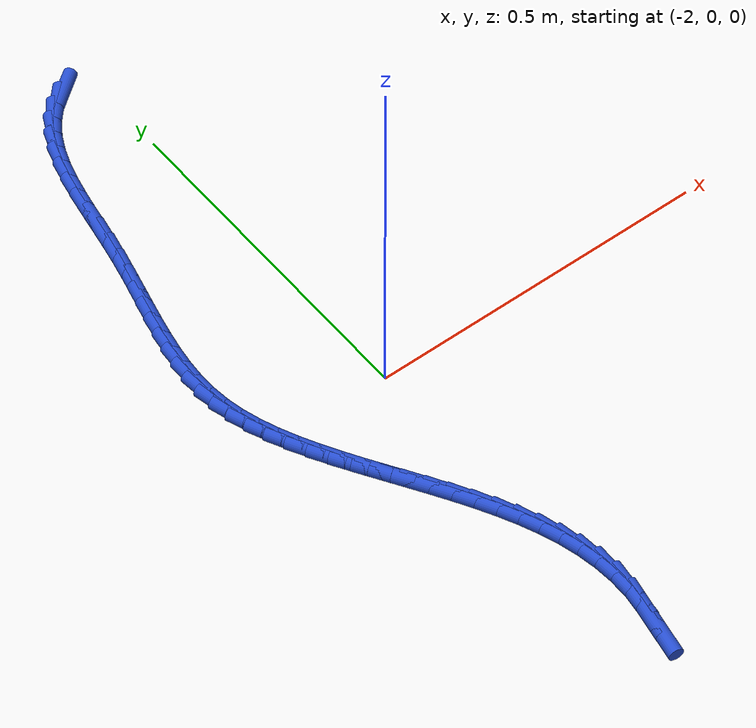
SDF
<sdf version="1.6">
 <world name="default">
  <model name="ground_plane">
   <static>1</static>
   <link name="link">
    <collision name="collision">
     <geometry><plane><normal>0 0 1</normal><size>100 100</size></plane></geometry>
     <surface><friction><ode><mu>100</mu><mu2>50</mu2></ode></friction></surface>
    </collision>
    <visual name="visual">
     <cast_shadows>0</cast_shadows>
     <geometry><plane><normal>0 0 1</normal><size>100 100</size></plane></geometry>
     <material>
      <script><uri>file://media/materials/scripts/gazebo.material</uri><name>Gazebo/WhiteGlow</name></script>
     </material>
    </visual>
   </link>
  </model>
  <model name="line">
   <link name="link_110">
    <pose>-2.0485483530769217 0.6425970063042622 0.01 0 1.57 0.6973352669385511</pose>
    <collision name="collision">
     <geometry><cylinder><radius>0.01</radius><length>0.08</length></cylinder></geometry>
    </collision>
    <visual name="visual">
     <material>
      <script><name>Gazebo/Blue</name><uri>file://media/materials/scripts/gazebo.material</uri></script>
     </material>
     <geometry><cylinder><radius>0.01</radius><length>0.08</length></cylinder></geometry>
    </visual>
   </link>
   <link name="link_111">
    <pose>-2.069084061514904 0.6253933532512365 0.01 0 1.57 0.8696262016092936</pose>
    <collision name="collision">
     <geometry><cylinder><radius>0.01</radius><length>0.08</length></cylinder></geometry>
    </collision>
    <visual name="visual">
     <material>
      <script><name>Gazebo/Blue</name><uri>file://media/materials/scripts/gazebo.material</uri></script>
     </material>
     <geometry><cylinder><radius>0.01</radius><length>0.08</length></cylinder></geometry>
    </visual>
   </link>
   <link name="link_112">
    <pose>-2.086060620894317 0.6052858702609963 0.01 0 1.57 1.0214029645124276</pose>
    <collision name="collision">
     <geometry><cylinder><radius>0.01</radius><length>0.08</length></cylinder></geometry>
    </collision>
    <visual name="visual">
     <material>
      <script><name>Gazebo/Blue</name><uri>file://media/materials/scripts/gazebo.material</uri></script>
     </material>
     <geometry><cylinder><radius>0.01</radius><length>0.08</length></cylinder></geometry>
    </visual>
   </link>
   <link name="link_113">
    <pose>-2.099926705042605 0.5826388928562675 0.01 0 1.57 1.1467931466080155</pose>
    <collision name="collision">
     <geometry><cylinder><radius>0.01</radius><length>0.08</length></cylinder></geometry>
    </collision>
    <visual name="visual">
     <material>
      <script><name>Gazebo/Blue</name><uri>file://media/materials/scripts/gazebo.material</uri></script>
     </material>
     <geometry><cylinder><radius>0.01</radius><length>0.08</length></cylinder></geometry>
    </visual>
   </link>
   <link name="link_114">
    <pose>-2.111130987787217 0.5578167565597769 0.01 0 1.57 1.2452151497944808</pose>
    <collision name="collision">
     <geometry><cylinder><radius>0.01</radius><length>0.08</length></cylinder></geometry>
    </collision>
    <visual name="visual">
     <material>
      <script><name>Gazebo/Blue</name><uri>file://media/materials/scripts/gazebo.material</uri></script>
     </material>
     <geometry><cylinder><radius>0.01</radius><length>0.08</length></cylinder></geometry>
    </visual>
   </link>
   <link name="link_115">
    <pose>-2.1201221429555974 0.5311837968942501 0.01 0 1.57 1.318896851618534</pose>
    <collision name="collision">
     <geometry><cylinder><radius>0.01</radius><length>0.08</length></cylinder></geometry>
    </collision>
    <visual name="visual">
     <material>
      <script><name>Gazebo/Blue</name><uri>file://media/materials/scripts/gazebo.material</uri></script>
     </material>
     <geometry><cylinder><radius>0.01</radius><length>0.08</length></cylinder></geometry>
    </visual>
   </link>
   <link name="link_116">
    <pose>-2.127348844375191 0.5031043493824141 0.01 0 1.57 1.3708104059334882</pose>
    <collision name="collision">
     <geometry><cylinder><radius>0.01</radius><length>0.08</length></cylinder></geometry>
    </collision>
    <visual name="visual">
     <material>
      <script><name>Gazebo/Blue</name><uri>file://media/materials/scripts/gazebo.material</uri></script>
     </material>
     <geometry><cylinder><radius>0.01</radius><length>0.08</length></cylinder></geometry>
    </visual>
   </link>
   <link name="link_117">
    <pose>-2.1332597658734453 0.47394274954699506 0.01 0 1.57 1.4035671666285718</pose>
    <collision name="collision">
     <geometry><cylinder><radius>0.01</radius><length>0.08</length></cylinder></geometry>
    </collision>
    <visual name="visual">
     <material>
      <script><name>Gazebo/Blue</name><uri>file://media/materials/scripts/gazebo.material</uri></script>
     </material>
     <geometry><cylinder><radius>0.01</radius><length>0.08</length></cylinder></geometry>
    </visual>
   </link>
   <link name="link_118">
    <pose>-2.138303581277806 0.4440633329107185 0.01 0 1.57 1.4189817807922733</pose>
    <collision name="collision">
     <geometry><cylinder><radius>0.01</radius><length>0.08</length></cylinder></geometry>
    </collision>
    <visual name="visual">
     <material>
      <script><name>Gazebo/Blue</name><uri>file://media/materials/scripts/gazebo.material</uri></script>
     </material>
     <geometry><cylinder><radius>0.01</radius><length>0.08</length></cylinder></geometry>
    </visual>
   </link>
   <link name="link_119">
    <pose>-2.142928964415718 0.41383043499631167 0.01 0 1.57 1.417950493739882</pose>
    <collision name="collision">
     <geometry><cylinder><radius>0.01</radius><length>0.08</length></cylinder></geometry>
    </collision>
    <visual name="visual">
     <material>
      <script><name>Gazebo/Blue</name><uri>file://media/materials/scripts/gazebo.material</uri></script>
     </material>
     <geometry><cylinder><radius>0.01</radius><length>0.08</length></cylinder></geometry>
    </visual>
   </link>
   <link name="link_120">
    <pose>-2.147584589114629 0.3836083913265006 0.01 0 1.57 1.4005409097854242</pose>
    <collision name="collision">
     <geometry><cylinder><radius>0.01</radius><length>0.08</length></cylinder></geometry>
    </collision>
    <visual name="visual">
     <material>
      <script><name>Gazebo/Blue</name><uri>file://media/materials/scripts/gazebo.material</uri></script>
     </material>
     <geometry><cylinder><radius>0.01</radius><length>0.08</length></cylinder></geometry>
    </visual>
   </link>
   <link name="link_121">
    <pose>-2.152716119598153 0.353759990068697 0.01 0 1.57 1.3754819699969816</pose>
    <collision name="collision">
     <geometry><cylinder><radius>0.01</radius><length>0.08</length></cylinder></geometry>
    </collision>
    <visual name="visual">
     <material>
      <script><name>Gazebo/Blue</name><uri>file://media/materials/scripts/gazebo.material</uri></script>
     </material>
     <geometry><cylinder><radius>0.01</radius><length>0.08</length></cylinder></geometry>
    </visual>
   </link>
   <link name="link_122">
    <pose>-2.158502643395345 0.32451096186105416 0.01 0 1.57 1.3595153884265934</pose>
    <collision name="collision">
     <geometry><cylinder><radius>0.01</radius><length>0.08</length></cylinder></geometry>
    </collision>
    <visual name="visual">
     <material>
      <script><name>Gazebo/Blue</name><uri>file://media/materials/scripts/gazebo.material</uri></script>
     </material>
     <geometry><cylinder><radius>0.01</radius><length>0.08</length></cylinder></geometry>
    </visual>
   </link>
   <link name="link_123">
    <pose>-2.1646511246539952 0.29584430020280295 0.01 0 1.57 1.3548814141290977</pose>
    <collision name="collision">
     <geometry><cylinder><radius>0.01</radius><length>0.08</length></cylinder></geometry>
    </collision>
    <visual name="visual">
     <material>
      <script><name>Gazebo/Blue</name><uri>file://media/materials/scripts/gazebo.material</uri></script>
     </material>
     <geometry><cylinder><radius>0.01</radius><length>0.08</length></cylinder></geometry>
    </visual>
   </link>
   <link name="link_124">
    <pose>-2.1708201495661053 0.26771812558954716 0.01 0 1.57 1.3621973212610448</pose>
    <collision name="collision">
     <geometry><cylinder><radius>0.01</radius><length>0.08</length></cylinder></geometry>
    </collision>
    <visual name="visual">
     <material>
      <script><name>Gazebo/Blue</name><uri>file://media/materials/scripts/gazebo.material</uri></script>
     </material>
     <geometry><cylinder><radius>0.01</radius><length>0.08</length></cylinder></geometry>
    </visual>
   </link>
   <link name="link_125">
    <pose>-2.1766683043236763 0.24009055851688926 0.01 0 1.57 1.3822028969648559</pose>
    <collision name="collision">
     <geometry><cylinder><radius>0.01</radius><length>0.08</length></cylinder></geometry>
    </collision>
    <visual name="visual">
     <material>
      <script><name>Gazebo/Blue</name><uri>file://media/materials/scripts/gazebo.material</uri></script>
     </material>
     <geometry><cylinder><radius>0.01</radius><length>0.08</length></cylinder></geometry>
    </visual>
   </link>
   <link name="link_126">
    <pose>-2.18185417511871 0.21291971948043187 0.01 0 1.57 1.4157430529865378</pose>
    <collision name="collision">
     <geometry><cylinder><radius>0.01</radius><length>0.08</length></cylinder></geometry>
    </collision>
    <visual name="visual">
     <material>
      <script><name>Gazebo/Blue</name><uri>file://media/materials/scripts/gazebo.material</uri></script>
     </material>
     <geometry><cylinder><radius>0.01</radius><length>0.08</length></cylinder></geometry>
    </visual>
   </link>
   <link name="link_127">
    <pose>-2.186036348143208 0.18616372897577868 0.01 0 1.57 1.4636743556756002</pose>
    <collision name="collision">
     <geometry><cylinder><radius>0.01</radius><length>0.08</length></cylinder></geometry>
    </collision>
    <visual name="visual">
     <material>
      <script><name>Gazebo/Blue</name><uri>file://media/materials/scripts/gazebo.material</uri></script>
     </material>
     <geometry><cylinder><radius>0.01</radius><length>0.08</length></cylinder></geometry>
    </visual>
   </link>
   <link name="link_128">
    <pose>-2.188873409589171 0.15978070749853232 0.01 0 1.57 1.5266618288606306</pose>
    <collision name="collision">
     <geometry><cylinder><radius>0.01</radius><length>0.08</length></cylinder></geometry>
    </collision>
    <visual name="visual">
     <material>
      <script><name>Gazebo/Blue</name><uri>file://media/materials/scripts/gazebo.material</uri></script>
     </material>
     <geometry><cylinder><radius>0.01</radius><length>0.08</length></cylinder></geometry>
    </visual>
   </link>
   <link name="link_129">
    <pose>-2.1900239456486 0.13372877554429566 0.01 0 1.57 -1.5367524030078619</pose>
    <collision name="collision">
     <geometry><cylinder><radius>0.01</radius><length>0.08</length></cylinder></geometry>
    </collision>
    <visual name="visual">
     <material>
      <script><name>Gazebo/Blue</name><uri>file://media/materials/scripts/gazebo.material</uri></script>
     </material>
     <geometry><cylinder><radius>0.01</radius><length>0.08</length></cylinder></geometry>
    </visual>
   </link>
   <link name="link_130">
    <pose>-2.189146542513497 0.10796605360867166 0.01 0 1.57 -1.4443167269968658</pose>
    <collision name="collision">
     <geometry><cylinder><radius>0.01</radius><length>0.08</length></cylinder></geometry>
    </collision>
    <visual name="visual">
     <material>
      <script><name>Gazebo/Blue</name><uri>file://media/materials/scripts/gazebo.material</uri></script>
     </material>
     <geometry><cylinder><radius>0.01</radius><length>0.08</length></cylinder></geometry>
    </visual>
   </link>
   <link name="link_131">
    <pose>-2.185902051522588 0.08245070004034208 0.01 0 1.57 -1.3477225847592007</pose>
    <collision name="collision">
     <geometry><cylinder><radius>0.01</radius><length>0.08</length></cylinder></geometry>
    </collision>
    <visual name="visual">
     <material>
      <script><name>Gazebo/Blue</name><uri>file://media/materials/scripts/gazebo.material</uri></script>
     </material>
     <geometry><cylinder><radius>0.01</radius><length>0.08</length></cylinder></geometry>
    </visual>
   </link>
   <link name="link_132">
    <pose>-2.1801613362629166 0.05714438272231153 0.01 0 1.57 -1.2629928748778256</pose>
    <collision name="collision">
     <geometry><cylinder><radius>0.01</radius><length>0.08</length></cylinder></geometry>
    </collision>
    <visual name="visual">
     <material>
      <script><name>Gazebo/Blue</name><uri>file://media/materials/scripts/gazebo.material</uri></script>
     </material>
     <geometry><cylinder><radius>0.01</radius><length>0.08</length></cylinder></geometry>
    </visual>
   </link>
   <link name="link_133">
    <pose>-2.1721725464866175 0.03201507440197436 0.01 0 1.57 -1.1918131211818965</pose>
    <collision name="collision">
     <geometry><cylinder><radius>0.01</radius><length>0.08</length></cylinder></geometry>
    </collision>
    <visual name="visual">
     <material>
      <script><name>Gazebo/Blue</name><uri>file://media/materials/scripts/gazebo.material</uri></script>
     </material>
     <geometry><cylinder><radius>0.01</radius><length>0.08</length></cylinder></geometry>
    </visual>
   </link>
   <link name="link_134">
    <pose>-2.1622231952517077 0.007031405630613018 0.01 0 1.57 -1.1336185397072902</pose>
    <collision name="collision">
     <geometry><cylinder><radius>0.01</radius><length>0.08</length></cylinder></geometry>
    </collision>
    <visual name="visual">
     <material>
      <script><name>Gazebo/Blue</name><uri>file://media/materials/scripts/gazebo.material</uri></script>
     </material>
     <geometry><cylinder><radius>0.01</radius><length>0.08</length></cylinder></geometry>
    </visual>
   </link>
   <link name="link_135">
    <pose>-2.150600795616201 -0.017837993040492186 0.01 0 1.57 -1.0875067308151318</pose>
    <collision name="collision">
     <geometry><cylinder><radius>0.01</radius><length>0.08</length></cylinder></geometry>
    </collision>
    <visual name="visual">
     <material>
      <script><name>Gazebo/Blue</name><uri>file://media/materials/scripts/gazebo.material</uri></script>
     </material>
     <geometry><cylinder><radius>0.01</radius><length>0.08</length></cylinder></geometry>
    </visual>
   </link>
   <link name="link_136">
    <pose>-2.1375928606381147 -0.042624491060060256 0.01 0 1.57 -1.052513424599117</pose>
    <collision name="collision">
     <geometry><cylinder><radius>0.01</radius><length>0.08</length></cylinder></geometry>
    </collision>
    <visual name="visual">
     <material>
      <script><name>Gazebo/Blue</name><uri>file://media/materials/scripts/gazebo.material</uri></script>
     </material>
     <geometry><cylinder><radius>0.01</radius><length>0.08</length></cylinder></geometry>
    </visual>
   </link>
   <link name="link_137">
    <pose>-2.123486903375461 -0.06735945787681011 0.01 0 1.57 -1.0277751905926378</pose>
    <collision name="collision">
     <geometry><cylinder><radius>0.01</radius><length>0.08</length></cylinder></geometry>
    </collision>
    <visual name="visual">
     <material>
      <script><name>Gazebo/Blue</name><uri>file://media/materials/scripts/gazebo.material</uri></script>
     </material>
     <geometry><cylinder><radius>0.01</radius><length>0.08</length></cylinder></geometry>
    </visual>
   </link>
   <link name="link_138">
    <pose>-2.108570436886257 -0.09207426293946072 0.01 0 1.57 -1.0126128669635008</pose>
    <collision name="collision">
     <geometry><cylinder><radius>0.01</radius><length>0.08</length></cylinder></geometry>
    </collision>
    <visual name="visual">
     <material>
      <script><name>Gazebo/Blue</name><uri>file://media/materials/scripts/gazebo.material</uri></script>
     </material>
     <geometry><cylinder><radius>0.01</radius><length>0.08</length></cylinder></geometry>
    </visual>
   </link>
   <link name="link_139">
    <pose>-2.093130974228518 -0.11680027569673113 0.01 0 1.57 -1.0065678316760027</pose>
    <collision name="collision">
     <geometry><cylinder><radius>0.01</radius><length>0.08</length></cylinder></geometry>
    </collision>
    <visual name="visual">
     <material>
      <script><name>Gazebo/Blue</name><uri>file://media/materials/scripts/gazebo.material</uri></script>
     </material>
     <geometry><cylinder><radius>0.01</radius><length>0.08</length></cylinder></geometry>
    </visual>
   </link>
   <link name="link_140">
    <pose>-2.077456028460258 -0.14156886559734094 0.01 0 1.57 -1.0094134515685145</pose>
    <collision name="collision">
     <geometry><cylinder><radius>0.01</radius><length>0.08</length></cylinder></geometry>
    </collision>
    <visual name="visual">
     <material>
      <script><name>Gazebo/Blue</name><uri>file://media/materials/scripts/gazebo.material</uri></script>
     </material>
     <geometry><cylinder><radius>0.01</radius><length>0.08</length></cylinder></geometry>
    </visual>
   </link>
   <link name="link_141">
    <pose>-2.061833112639494 -0.16641140209000782 0.01 0 1.57 -1.0211543188878676</pose>
    <collision name="collision">
     <geometry><cylinder><radius>0.01</radius><length>0.08</length></cylinder></geometry>
    </collision>
    <visual name="visual">
     <material>
      <script><name>Gazebo/Blue</name><uri>file://media/materials/scripts/gazebo.material</uri></script>
     </material>
     <geometry><cylinder><radius>0.01</radius><length>0.08</length></cylinder></geometry>
    </visual>
   </link>
   <link name="link_142">
    <pose>-2.0465497398242403 -0.1913592546234512 0.01 0 1.57 -1.0420181402382895</pose>
    <collision name="collision">
     <geometry><cylinder><radius>0.01</radius><length>0.08</length></cylinder></geometry>
    </collision>
    <visual name="visual">
     <material>
      <script><name>Gazebo/Blue</name><uri>file://media/materials/scripts/gazebo.material</uri></script>
     </material>
     <geometry><cylinder><radius>0.01</radius><length>0.08</length></cylinder></geometry>
    </visual>
   </link>
   <link name="link_143">
    <pose>-2.0318934230725127 -0.21644379264639038 0.01 0 1.57 -1.072438791744335</pose>
    <collision name="collision">
     <geometry><cylinder><radius>0.01</radius><length>0.08</length></cylinder></geometry>
    </collision>
    <visual name="visual">
     <material>
      <script><name>Gazebo/Blue</name><uri>file://media/materials/scripts/gazebo.material</uri></script>
     </material>
     <geometry><cylinder><radius>0.01</radius><length>0.08</length></cylinder></geometry>
    </visual>
   </link>
   <link name="link_144">
    <pose>-2.018151675442326 -0.24169638560754414 0.01 0 1.57 -1.113022936341566</pose>
    <collision name="collision">
     <geometry><cylinder><radius>0.01</radius><length>0.08</length></cylinder></geometry>
    </collision>
    <visual name="visual">
     <material>
      <script><name>Gazebo/Blue</name><uri>file://media/materials/scripts/gazebo.material</uri></script>
     </material>
     <geometry><cylinder><radius>0.01</radius><length>0.08</length></cylinder></geometry>
    </visual>
   </link>
   <link name="link_145">
    <pose>-2.005612009991696 -0.26714840295563147 0.01 0 1.57 -1.16448596212657</pose>
    <collision name="collision">
     <geometry><cylinder><radius>0.01</radius><length>0.08</length></cylinder></geometry>
    </collision>
    <visual name="visual">
     <material>
      <script><name>Gazebo/Blue</name><uri>file://media/materials/scripts/gazebo.material</uri></script>
     </material>
     <geometry><cylinder><radius>0.01</radius><length>0.08</length></cylinder></geometry>
    </visual>
   </link>
   <link name="link_146">
    <pose>-1.9945619397786372 -0.29283121413937135 0.01 0 1.57 -1.2275365567584602</pose>
    <collision name="collision">
     <geometry><cylinder><radius>0.01</radius><length>0.08</length></cylinder></geometry>
    </collision>
    <visual name="visual">
     <material>
      <script><name>Gazebo/Blue</name><uri>file://media/materials/scripts/gazebo.material</uri></script>
     </material>
     <geometry><cylinder><radius>0.01</radius><length>0.08</length></cylinder></geometry>
    </visual>
   </link>
   <link name="link_147">
    <pose>-1.9852889778611655 -0.3187761886074828 0.01 0 1.57 -1.3026869801905432</pose>
    <collision name="collision">
     <geometry><cylinder><radius>0.01</radius><length>0.08</length></cylinder></geometry>
    </collision>
    <visual name="visual">
     <material>
      <script><name>Gazebo/Blue</name><uri>file://media/materials/scripts/gazebo.material</uri></script>
     </material>
     <geometry><cylinder><radius>0.01</radius><length>0.08</length></cylinder></geometry>
    </visual>
   </link>
   <link name="link_148">
    <pose>-1.9780806372972957 -0.3450146958086847 0.01 0 1.57 -1.3899774767332396</pose>
    <collision name="collision">
     <geometry><cylinder><radius>0.01</radius><length>0.08</length></cylinder></geometry>
    </collision>
    <visual name="visual">
     <material>
      <script><name>Gazebo/Blue</name><uri>file://media/materials/scripts/gazebo.material</uri></script>
     </material>
     <geometry><cylinder><radius>0.01</radius><length>0.08</length></cylinder></geometry>
    </visual>
   </link>
   <link name="link_149">
    <pose>-1.9732244311450438 -0.37157810519169693 0.01 0 1.57 -1.4886419481669328</pose>
    <collision name="collision">
     <geometry><cylinder><radius>0.01</radius><length>0.08</length></cylinder></geometry>
    </collision>
    <visual name="visual">
     <material>
      <script><name>Gazebo/Blue</name><uri>file://media/materials/scripts/gazebo.material</uri></script>
     </material>
     <geometry><cylinder><radius>0.01</radius><length>0.08</length></cylinder></geometry>
    </visual>
   </link>
   <link name="link_150">
    <pose>-1.9710078724624247 -0.3984977862052368 0.01 0 1.57 1.5447798060410782</pose>
    <collision name="collision">
     <geometry><cylinder><radius>0.01</radius><length>0.08</length></cylinder></geometry>
    </collision>
    <visual name="visual">
     <material>
      <script><name>Gazebo/Blue</name><uri>file://media/materials/scripts/gazebo.material</uri></script>
     </material>
     <geometry><cylinder><radius>0.01</radius><length>0.08</length></cylinder></geometry>
    </visual>
   </link>
   <link name="link_151">
    <pose>-1.9717184743074527 -0.4258051082980241 0.01 0 1.57 1.4336001761837238</pose>
    <collision name="collision">
     <geometry><cylinder><radius>0.01</radius><length>0.08</length></cylinder></geometry>
    </collision>
    <visual name="visual">
     <material>
      <script><name>Gazebo/Blue</name><uri>file://media/materials/scripts/gazebo.material</uri></script>
     </material>
     <geometry><cylinder><radius>0.01</radius><length>0.08</length></cylinder></geometry>
    </visual>
   </link>
   <link name="link_152">
    <pose>-1.9755432198587153 -0.45350791128626866 0.01 0 1.57 1.3678811837536766</pose>
    <collision name="collision">
     <geometry><cylinder><radius>0.01</radius><length>0.08</length></cylinder></geometry>
    </collision>
    <visual name="visual">
     <material>
      <script><name>Gazebo/Blue</name><uri>file://media/materials/scripts/gazebo.material</uri></script>
     </material>
     <geometry><cylinder><radius>0.01</radius><length>0.08</length></cylinder></geometry>
    </visual>
   </link>
   <link name="link_153">
    <pose>-1.9812580115848484 -0.48128376292443925 0.01 0 1.57 1.3775045932852565</pose>
    <collision name="collision">
     <geometry><cylinder><radius>0.01</radius><length>0.08</length></cylinder></geometry>
    </collision>
    <visual name="visual">
     <material>
      <script><name>Gazebo/Blue</name><uri>file://media/materials/scripts/gazebo.material</uri></script>
     </material>
     <geometry><cylinder><radius>0.01</radius><length>0.08</length></cylinder></geometry>
    </visual>
   </link>
  </model>
 </world>
</sdf>
